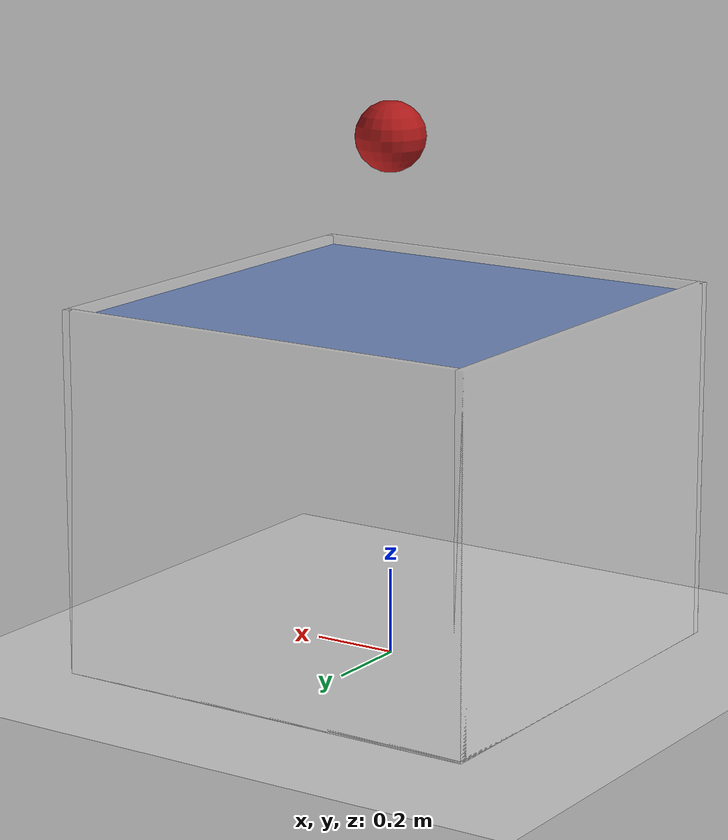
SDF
<?xml version="1.0" ?>
<sdf version="1.7">
  <world name="water_tank_world">

    <!-- Lighting & physics -->
    <gravity>0 0 -9.81</gravity>
    <magnetic_field>0 0 0</magnetic_field>

    <!-- Sun and ground for reference -->
    <include>
      <uri>model://sun</uri>
    </include>
    <include>
      <uri>model://ground_plane</uri>
    </include>

    <!-- =======================
         Transparent Tank Model
         ======================= -->
    <!-- Tank outer dims: 1.04 x 1.04 x 0.84 m
         Inner cavity for water: 1.00 x 1.00 x 0.80 m
         Wall thickness: 0.02 m ; Bottom thickness: 0.02 m -->
    <model name="transparent_tank">
      <static>true</static>

      <!-- Bottom plate -->
      <link name="bottom">
        <pose>0 0 0.01 0 0 0</pose>
        <collision name="bottom_col">
          <geometry>
            <box><size>1.04 1.04 0.02</size></box>
          </geometry>
        </collision>
        <visual name="bottom_vis">
          <geometry>
            <box><size>1.04 1.04 0.02</size></box>
          </geometry>
          <material>
            <pbr>
              <metal>
                <albedo_map></albedo_map>
              </metal>
            </pbr>
            <ambient>1 1 1 1</ambient>
            <diffuse>1 1 1 0.15</diffuse> <!-- transparent -->
            <specular>0.8 0.8 0.8 1</specular>
          </material>
          <transparency>0.85</transparency>
        </visual>
      </link>

      <!-- Four side walls (thin boxes) -->
      <!-- +X wall -->
      <link name="wall_px">
        <pose>0.51 0 0.42 0 0 0</pose>
        <collision name="px_col">
          <geometry>
            <box><size>0.02 1.04 0.84</size></box>
          </geometry>
        </collision>
        <visual name="px_vis">
          <geometry>
            <box><size>0.02 1.04 0.84</size></box>
          </geometry>
          <material>
            <ambient>1 1 1 1</ambient>
            <diffuse>1 1 1 0.10</diffuse>
            <specular>0.8 0.8 0.8 1</specular>
          </material>
          <transparency>0.90</transparency>
        </visual>
      </link>

      <!-- -X wall -->
      <link name="wall_nx">
        <pose>-0.51 0 0.42 0 0 0</pose>
        <collision name="nx_col">
          <geometry>
            <box><size>0.02 1.04 0.84</size></box>
          </geometry>
        </collision>
        <visual name="nx_vis">
          <geometry>
            <box><size>0.02 1.04 0.84</size></box>
          </geometry>
          <material>
            <ambient>1 1 1 1</ambient>
            <diffuse>1 1 1 0.10</diffuse>
            <specular>0.8 0.8 0.8 1</specular>
          </material>
          <transparency>0.90</transparency>
        </visual>
      </link>

      <!-- +Y wall -->
      <link name="wall_py">
        <pose>0 0.51 0.42 0 0 0</pose>
        <collision name="py_col">
          <geometry>
            <box><size>1.04 0.02 0.84</size></box>
          </geometry>
        </collision>
        <visual name="py_vis">
          <geometry>
            <box><size>1.04 0.02 0.84</size></box>
          </geometry>
          <material>
            <ambient>1 1 1 1</ambient>
            <diffuse>1 1 1 0.10</diffuse>
            <specular>0.8 0.8 0.8 1</specular>
          </material>
          <transparency>0.90</transparency>
        </visual>
      </link>

      <!-- -Y wall -->
      <link name="wall_ny">
        <pose>0 -0.51 0.42 0 0 0</pose>
        <collision name="ny_col">
          <geometry>
            <box><size>1.04 0.02 0.84</size></box>
          </geometry>
        </collision>
        <visual name="ny_vis">
          <geometry>
            <box><size>1.04 0.02 0.84</size></box>
          </geometry>
          <material>
            <ambient>1 1 1 1</ambient>
            <diffuse>1 1 1 0.10</diffuse>
            <specular>0.8 0.8 0.8 1</specular>
          </material>
          <transparency>0.90</transparency>
        </visual>
      </link>
    </model>

    <!-- =======================
         Water Volume (visual)
         ======================= -->
    <!-- A non-colliding blue box that looks like water and matches the inner tank cavity. -->
    <model name="water_visual">
      <static>true</static>
      <link name="water_link">
        <!-- Centered so its top is flush with tank rim (0.82 m top, bottom at 0.02 m) -->
        <pose>0 0 0.42 0 0 0</pose>
        <visual name="water_vis">
          <geometry>
            <box><size>1.00 1.00 0.80</size></box>
          </geometry>
          <material>
            <ambient>0.2 0.4 0.8 1</ambient>
            <diffuse>0.2 0.4 0.8 0.5</diffuse> <!-- semi-transparent blue -->
            <specular>0.1 0.1 0.1 1</specular>
          </material>
          <transparency>0.50</transparency>
        </visual>
      </link>
    </model>

    <!-- ======================================
         Buoyancy System: defines "real water"
         ====================================== -->
    <!-- Any object whose volume intersects this region will feel buoyancy. -->
    <plugin
        name="ignition::gazebo::systems::Buoyancy"
        filename="ignition-gazebo-buoyancy-system">
      <region name="tank_water">
        <!-- Same volume as water_visual -->
        <pose>0 0 0.42 0 0 0</pose>
        <box>
          <size>1.00 1.00 0.80</size>
        </box>
        <fluid_density>1000</fluid_density>         <!-- kg/m^3 -->
        <linear_damping>0.2</linear_damping>
        <angular_damping>0.2</angular_damping>
      </region>
    </plugin>

    <!-- Helpful: spawn a test sphere you can drop into the water -->
    <model name="float_test_sphere">
      <pose>0 0 1.2 0 0 0</pose>
      <link name="ball">
        <inertial>
          <mass>0.5</mass>
          <inertia>
            <ixx>0.001</ixx><iyy>0.001</iyy><izz>0.001</izz>
            <ixy>0</ixy><ixz>0</ixz><iyz>0</iyz>
          </inertia>
        </inertial>
        <collision name="col">
          <geometry><sphere><radius>0.08</radius></sphere></geometry>
        </collision>
        <visual name="vis">
          <geometry><sphere><radius>0.08</radius></sphere></geometry>
          <material>
            <ambient>0.7 0.1 0.1 1</ambient>
            <diffuse>0.7 0.1 0.1 1</diffuse>
          </material>
        </visual>
      </link>
    </model>

  </world>
</sdf>
